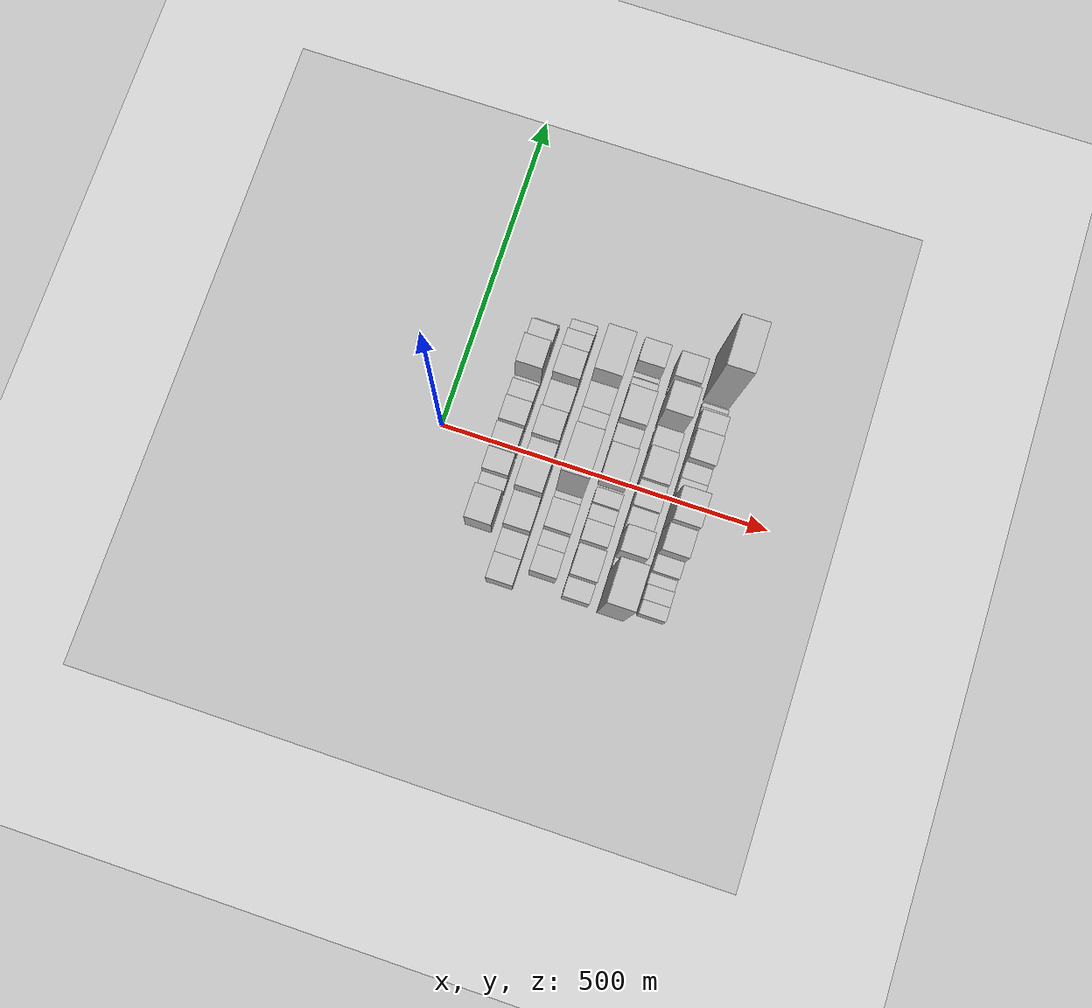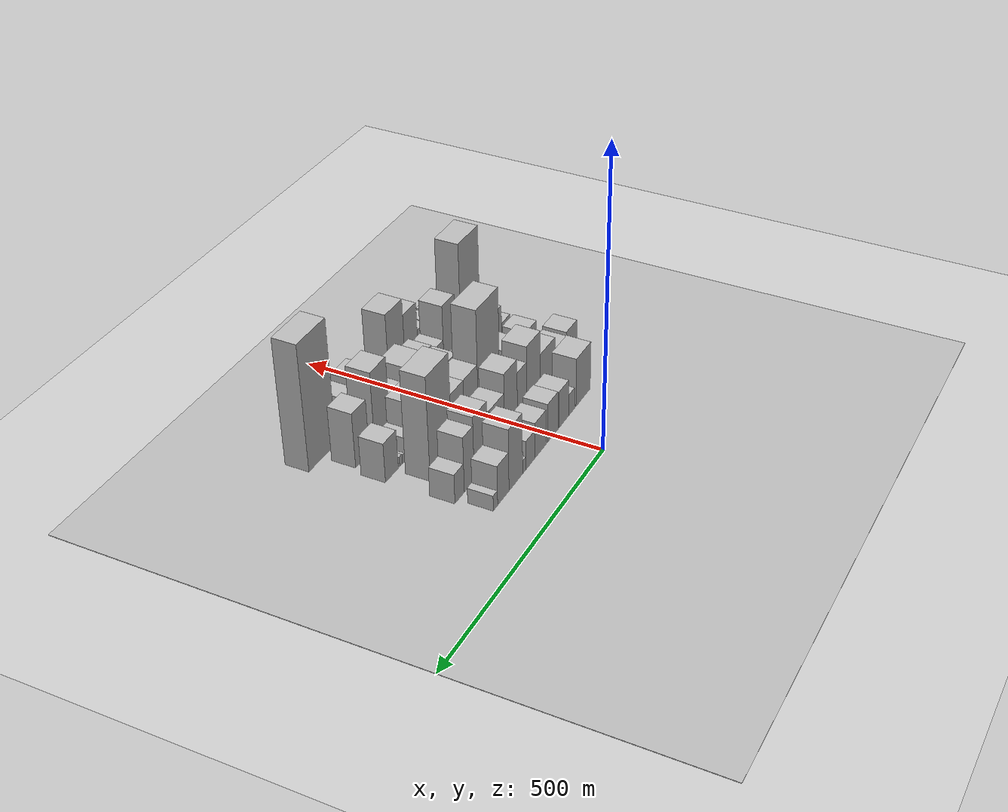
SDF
<sdf version="1.6">
 <world name="default">
  <include><name>ground_plane_1</name><uri>model://HANNAS_ground_plane</uri></include>
  <include>
   <name>ground_plane_2</name>
   <uri>model://HANNAS_ground_plane</uri>
   <pose>100 0 0  0 0 0</pose>
  </include>
  <model name="building_23">
   <static>1</static>
   <pose>100.0000 -103.5730 0 0.000000 0.000000 0.000000</pose>
   <link name="link">
    <pose>0 0 43.50 0 0 0</pose>
    <collision name="collision"><geometry><box><size>40.0000 50.8231 87.0000</size></box></geometry></collision>
    <visual name="visual">
     <cast_shadows>0</cast_shadows>
     <geometry><box><size>40.0000 50.8231 87.0000</size></box></geometry>
     <material>
      <script>
       <uri>model://HANNAS_wall/materials/scripts</uri>
       <uri>model://HANNAS_wall/materials/textures</uri>
       <name>vrc/HANNAS_wall</name>
      </script>
     </material>
    </visual>
   </link>
  </model>
  <model name="building_24">
   <static>1</static>
   <pose>100.0000 -62.7627 0 0.000000 0.000000 0.000000</pose>
   <link name="link">
    <pose>0 0 19.50 0 0 0</pose>
    <collision name="collision"><geometry><box><size>40.0000 20.7975 39.0000</size></box></geometry></collision>
    <visual name="visual">
     <cast_shadows>0</cast_shadows>
     <geometry><box><size>40.0000 20.7975 39.0000</size></box></geometry>
     <material>
      <script>
       <uri>model://HANNAS_wall/materials/scripts</uri>
       <uri>model://HANNAS_wall/materials/textures</uri>
       <name>vrc/HANNAS_wall</name>
      </script>
     </material>
    </visual>
   </link>
  </model>
  <model name="building_25">
   <static>1</static>
   <pose>100.0000 -35.5092 0 0.000000 0.000000 0.000000</pose>
   <link name="link">
    <pose>0 0 33.00 0 0 0</pose>
    <collision name="collision"><geometry><box><size>40.0000 33.7094 66.0000</size></box></geometry></collision>
    <visual name="visual">
     <cast_shadows>0</cast_shadows>
     <geometry><box><size>40.0000 33.7094 66.0000</size></box></geometry>
     <material>
      <script>
       <uri>model://HANNAS_wall/materials/scripts</uri>
       <uri>model://HANNAS_wall/materials/textures</uri>
       <name>vrc/HANNAS_wall</name>
      </script>
     </material>
    </visual>
   </link>
  </model>
  <model name="building_26">
   <static>1</static>
   <pose>100.0000 1.7583 0 0.000000 0.000000 0.000000</pose>
   <link name="link">
    <pose>0 0 34.50 0 0 0</pose>
    <collision name="collision"><geometry><box><size>40.0000 34.8256 69.0000</size></box></geometry></collision>
    <visual name="visual">
     <cast_shadows>0</cast_shadows>
     <geometry><box><size>40.0000 34.8256 69.0000</size></box></geometry>
     <material>
      <script>
       <uri>model://HANNAS_wall/materials/scripts</uri>
       <uri>model://HANNAS_wall/materials/textures</uri>
       <name>vrc/HANNAS_wall</name>
      </script>
     </material>
    </visual>
   </link>
  </model>
  <model name="building_27">
   <static>1</static>
   <pose>100.0000 42.5124 0 0.000000 0.000000 0.000000</pose>
   <link name="link">
    <pose>0 0 31.50 0 0 0</pose>
    <collision name="collision"><geometry><box><size>40.0000 36.6826 63.0000</size></box></geometry></collision>
    <visual name="visual">
     <cast_shadows>0</cast_shadows>
     <geometry><box><size>40.0000 36.6826 63.0000</size></box></geometry>
     <material>
      <script>
       <uri>model://HANNAS_wall/materials/scripts</uri>
       <uri>model://HANNAS_wall/materials/textures</uri>
       <name>vrc/HANNAS_wall</name>
      </script>
     </material>
    </visual>
   </link>
  </model>
  <model name="building_28">
   <static>1</static>
   <pose>100.0000 75.3512 0 0.000000 0.000000 0.000000</pose>
   <link name="link">
    <pose>0 0 25.50 0 0 0</pose>
    <collision name="collision"><geometry><box><size>40.0000 28.9949 51.0000</size></box></geometry></collision>
    <visual name="visual">
     <cast_shadows>0</cast_shadows>
     <geometry><box><size>40.0000 28.9949 51.0000</size></box></geometry>
     <material>
      <script>
       <uri>model://HANNAS_wall/materials/scripts</uri>
       <uri>model://HANNAS_wall/materials/textures</uri>
       <name>vrc/HANNAS_wall</name>
      </script>
     </material>
    </visual>
   </link>
  </model>
  <model name="building_29">
   <static>1</static>
   <pose>100.0000 95.3679 0 0.000000 0.000000 0.000000</pose>
   <link name="link">
    <pose>0 0 12.00 0 0 0</pose>
    <collision name="collision"><geometry><box><size>40.0000 11.0385 24.0000</size></box></geometry></collision>
    <visual name="visual">
     <cast_shadows>0</cast_shadows>
     <geometry><box><size>40.0000 11.0385 24.0000</size></box></geometry>
     <material>
      <script>
       <uri>model://HANNAS_wall/materials/scripts</uri>
       <uri>model://HANNAS_wall/materials/textures</uri>
       <name>vrc/HANNAS_wall</name>
      </script>
     </material>
    </visual>
   </link>
  </model>
  <model name="building_30">
   <static>1</static>
   <pose>100.0000 122.2510 0 0.000000 0.000000 0.000000</pose>
   <link name="link">
    <pose>0 0 54.00 0 0 0</pose>
    <collision name="collision"><geometry><box><size>40.0000 42.7277 108.0000</size></box></geometry></collision>
    <visual name="visual">
     <cast_shadows>0</cast_shadows>
     <geometry><box><size>40.0000 42.7277 108.0000</size></box></geometry>
     <material>
      <script>
       <uri>model://HANNAS_wall/materials/scripts</uri>
       <uri>model://HANNAS_wall/materials/textures</uri>
       <name>vrc/HANNAS_wall</name>
      </script>
     </material>
    </visual>
   </link>
  </model>
  <model name="building_31">
   <static>1</static>
   <pose>100.0000 161.0687 0 0.000000 0.000000 0.000000</pose>
   <link name="link">
    <pose>0 0 34.50 0 0 0</pose>
    <collision name="collision"><geometry><box><size>40.0000 34.9078 69.0000</size></box></geometry></collision>
    <visual name="visual">
     <cast_shadows>0</cast_shadows>
     <geometry><box><size>40.0000 34.9078 69.0000</size></box></geometry>
     <material>
      <script>
       <uri>model://HANNAS_wall/materials/scripts</uri>
       <uri>model://HANNAS_wall/materials/textures</uri>
       <name>vrc/HANNAS_wall</name>
      </script>
     </material>
    </visual>
   </link>
  </model>
  <model name="building_32">
   <static>1</static>
   <pose>100.0000 185.1499 0 0.000000 0.000000 0.000000</pose>
   <link name="link">
    <pose>0 0 13.50 0 0 0</pose>
    <collision name="collision"><geometry><box><size>40.0000 13.2545 27.0000</size></box></geometry></collision>
    <visual name="visual">
     <cast_shadows>0</cast_shadows>
     <geometry><box><size>40.0000 13.2545 27.0000</size></box></geometry>
     <material>
      <script>
       <uri>model://HANNAS_wall/materials/scripts</uri>
       <uri>model://HANNAS_wall/materials/textures</uri>
       <name>vrc/HANNAS_wall</name>
      </script>
     </material>
    </visual>
   </link>
  </model>
  <model name="building_74">
   <static>1</static>
   <pose>155.0000 -179.0641 0 0.000000 0.000000 0.000000</pose>
   <link name="link">
    <pose>0 0 34.50 0 0 0</pose>
    <collision name="collision"><geometry><box><size>40.0000 38.3473 69.0000</size></box></geometry></collision>
    <visual name="visual">
     <cast_shadows>0</cast_shadows>
     <geometry><box><size>40.0000 38.3473 69.0000</size></box></geometry>
     <material>
      <script>
       <uri>model://HANNAS_wall/materials/scripts</uri>
       <uri>model://HANNAS_wall/materials/textures</uri>
       <name>vrc/HANNAS_wall</name>
      </script>
     </material>
    </visual>
   </link>
  </model>
  <model name="building_75">
   <static>1</static>
   <pose>155.0000 -141.5818 0 0.000000 0.000000 0.000000</pose>
   <link name="link">
    <pose>0 0 31.50 0 0 0</pose>
    <collision name="collision"><geometry><box><size>40.0000 36.6174 63.0000</size></box></geometry></collision>
    <visual name="visual">
     <cast_shadows>0</cast_shadows>
     <geometry><box><size>40.0000 36.6174 63.0000</size></box></geometry>
     <material>
      <script>
       <uri>model://HANNAS_wall/materials/scripts</uri>
       <uri>model://HANNAS_wall/materials/textures</uri>
       <name>vrc/HANNAS_wall</name>
      </script>
     </material>
    </visual>
   </link>
  </model>
  <model name="building_76">
   <static>1</static>
   <pose>155.0000 -95.1414 0 0.000000 0.000000 0.000000</pose>
   <link name="link">
    <pose>0 0 42.00 0 0 0</pose>
    <collision name="collision"><geometry><box><size>40.0000 50.2634 84.0000</size></box></geometry></collision>
    <visual name="visual">
     <cast_shadows>0</cast_shadows>
     <geometry><box><size>40.0000 50.2634 84.0000</size></box></geometry>
     <material>
      <script>
       <uri>model://HANNAS_wall/materials/scripts</uri>
       <uri>model://HANNAS_wall/materials/textures</uri>
       <name>vrc/HANNAS_wall</name>
      </script>
     </material>
    </visual>
   </link>
  </model>
  <model name="building_77">
   <static>1</static>
   <pose>155.0000 -46.6092 0 0.000000 0.000000 0.000000</pose>
   <link name="link">
    <pose>0 0 63.00 0 0 0</pose>
    <collision name="collision"><geometry><box><size>40.0000 46.8009 126.0000</size></box></geometry></collision>
    <visual name="visual">
     <cast_shadows>0</cast_shadows>
     <geometry><box><size>40.0000 46.8009 126.0000</size></box></geometry>
     <material>
      <script>
       <uri>model://HANNAS_wall/materials/scripts</uri>
       <uri>model://HANNAS_wall/materials/textures</uri>
       <name>vrc/HANNAS_wall</name>
      </script>
     </material>
    </visual>
   </link>
  </model>
  <model name="building_78">
   <static>1</static>
   <pose>155.0000 -8.1289 0 0.000000 0.000000 0.000000</pose>
   <link name="link">
    <pose>0 0 49.50 0 0 0</pose>
    <collision name="collision"><geometry><box><size>40.0000 30.1599 99.0000</size></box></geometry></collision>
    <visual name="visual">
     <cast_shadows>0</cast_shadows>
     <geometry><box><size>40.0000 30.1599 99.0000</size></box></geometry>
     <material>
      <script>
       <uri>model://HANNAS_wall/materials/scripts</uri>
       <uri>model://HANNAS_wall/materials/textures</uri>
       <name>vrc/HANNAS_wall</name>
      </script>
     </material>
    </visual>
   </link>
  </model>
  <model name="building_79">
   <static>1</static>
   <pose>155.0000 27.8453 0 0.000000 0.000000 0.000000</pose>
   <link name="link">
    <pose>0 0 61.50 0 0 0</pose>
    <collision name="collision"><geometry><box><size>40.0000 41.7885 123.0000</size></box></geometry></collision>
    <visual name="visual">
     <cast_shadows>0</cast_shadows>
     <geometry><box><size>40.0000 41.7885 123.0000</size></box></geometry>
     <material>
      <script>
       <uri>model://HANNAS_wall/materials/scripts</uri>
       <uri>model://HANNAS_wall/materials/textures</uri>
       <name>vrc/HANNAS_wall</name>
      </script>
     </material>
    </visual>
   </link>
  </model>
  <model name="building_80">
   <static>1</static>
   <pose>155.0000 72.2314 0 0.000000 0.000000 0.000000</pose>
   <link name="link">
    <pose>0 0 45.00 0 0 0</pose>
    <collision name="collision"><geometry><box><size>40.0000 46.9836 90.0000</size></box></geometry></collision>
    <visual name="visual">
     <cast_shadows>0</cast_shadows>
     <geometry><box><size>40.0000 46.9836 90.0000</size></box></geometry>
     <material>
      <script>
       <uri>model://HANNAS_wall/materials/scripts</uri>
       <uri>model://HANNAS_wall/materials/textures</uri>
       <name>vrc/HANNAS_wall</name>
      </script>
     </material>
    </visual>
   </link>
  </model>
  <model name="building_81">
   <static>1</static>
   <pose>155.0000 122.4988 0 0.000000 0.000000 0.000000</pose>
   <link name="link">
    <pose>0 0 55.50 0 0 0</pose>
    <collision name="collision"><geometry><box><size>40.0000 41.5512 111.0000</size></box></geometry></collision>
    <visual name="visual">
     <cast_shadows>0</cast_shadows>
     <geometry><box><size>40.0000 41.5512 111.0000</size></box></geometry>
     <material>
      <script>
       <uri>model://HANNAS_wall/materials/scripts</uri>
       <uri>model://HANNAS_wall/materials/textures</uri>
       <name>vrc/HANNAS_wall</name>
      </script>
     </material>
    </visual>
   </link>
  </model>
  <model name="building_82">
   <static>1</static>
   <pose>155.0000 158.2174 0 0.000000 0.000000 0.000000</pose>
   <link name="link">
    <pose>0 0 48.00 0 0 0</pose>
    <collision name="collision"><geometry><box><size>40.0000 29.8861 96.0000</size></box></geometry></collision>
    <visual name="visual">
     <cast_shadows>0</cast_shadows>
     <geometry><box><size>40.0000 29.8861 96.0000</size></box></geometry>
     <material>
      <script>
       <uri>model://HANNAS_wall/materials/scripts</uri>
       <uri>model://HANNAS_wall/materials/textures</uri>
       <name>vrc/HANNAS_wall</name>
      </script>
     </material>
    </visual>
   </link>
  </model>
  <model name="building_83">
   <static>1</static>
   <pose>155.0000 187.1447 0 0.000000 0.000000 0.000000</pose>
   <link name="link">
    <pose>0 0 25.50 0 0 0</pose>
    <collision name="collision"><geometry><box><size>40.0000 27.9684 51.0000</size></box></geometry></collision>
    <visual name="visual">
     <cast_shadows>0</cast_shadows>
     <geometry><box><size>40.0000 27.9684 51.0000</size></box></geometry>
     <material>
      <script>
       <uri>model://HANNAS_wall/materials/scripts</uri>
       <uri>model://HANNAS_wall/materials/textures</uri>
       <name>vrc/HANNAS_wall</name>
      </script>
     </material>
    </visual>
   </link>
  </model>
  <model name="building_127">
   <static>1</static>
   <pose>210.0000 -150.8243 0 0.000000 0.000000 0.000000</pose>
   <link name="link">
    <pose>0 0 34.50 0 0 0</pose>
    <collision name="collision"><geometry><box><size>40.0000 37.6395 69.0000</size></box></geometry></collision>
    <visual name="visual">
     <cast_shadows>0</cast_shadows>
     <geometry><box><size>40.0000 37.6395 69.0000</size></box></geometry>
     <material>
      <script>
       <uri>model://HANNAS_wall/materials/scripts</uri>
       <uri>model://HANNAS_wall/materials/textures</uri>
       <name>vrc/HANNAS_wall</name>
      </script>
     </material>
    </visual>
   </link>
  </model>
  <model name="building_128">
   <static>1</static>
   <pose>210.0000 -118.5716 0 0.000000 0.000000 0.000000</pose>
   <link name="link">
    <pose>0 0 22.50 0 0 0</pose>
    <collision name="collision"><geometry><box><size>40.0000 26.8660 45.0000</size></box></geometry></collision>
    <visual name="visual">
     <cast_shadows>0</cast_shadows>
     <geometry><box><size>40.0000 26.8660 45.0000</size></box></geometry>
     <material>
      <script>
       <uri>model://HANNAS_wall/materials/scripts</uri>
       <uri>model://HANNAS_wall/materials/textures</uri>
       <name>vrc/HANNAS_wall</name>
      </script>
     </material>
    </visual>
   </link>
  </model>
  <model name="building_129">
   <static>1</static>
   <pose>210.0000 -83.3404 0 0.000000 0.000000 0.000000</pose>
   <link name="link">
    <pose>0 0 39.00 0 0 0</pose>
    <collision name="collision"><geometry><box><size>40.0000 43.5964 78.0000</size></box></geometry></collision>
    <visual name="visual">
     <cast_shadows>0</cast_shadows>
     <geometry><box><size>40.0000 43.5964 78.0000</size></box></geometry>
     <material>
      <script>
       <uri>model://HANNAS_wall/materials/scripts</uri>
       <uri>model://HANNAS_wall/materials/textures</uri>
       <name>vrc/HANNAS_wall</name>
      </script>
     </material>
    </visual>
   </link>
  </model>
  <model name="building_130">
   <static>1</static>
   <pose>210.0000 -49.5904 0 0.000000 0.000000 0.000000</pose>
   <link name="link">
    <pose>0 0 13.50 0 0 0</pose>
    <collision name="collision"><geometry><box><size>40.0000 11.9034 27.0000</size></box></geometry></collision>
    <visual name="visual">
     <cast_shadows>0</cast_shadows>
     <geometry><box><size>40.0000 11.9034 27.0000</size></box></geometry>
     <material>
      <script>
       <uri>model://HANNAS_wall/materials/scripts</uri>
       <uri>model://HANNAS_wall/materials/textures</uri>
       <name>vrc/HANNAS_wall</name>
      </script>
     </material>
    </visual>
   </link>
  </model>
  <model name="building_131">
   <static>1</static>
   <pose>210.0000 -9.3462 0 0.000000 0.000000 0.000000</pose>
   <link name="link">
    <pose>0 0 100.50 0 0 0</pose>
    <collision name="collision"><geometry><box><size>40.0000 68.5850 201.0000</size></box></geometry></collision>
    <visual name="visual">
     <cast_shadows>0</cast_shadows>
     <geometry><box><size>40.0000 68.5850 201.0000</size></box></geometry>
     <material>
      <script>
       <uri>model://HANNAS_wall/materials/scripts</uri>
       <uri>model://HANNAS_wall/materials/textures</uri>
       <name>vrc/HANNAS_wall</name>
      </script>
     </material>
    </visual>
   </link>
  </model>
  <model name="building_132">
   <static>1</static>
   <pose>210.0000 46.2725 0 0.000000 0.000000 0.000000</pose>
   <link name="link">
    <pose>0 0 54.00 0 0 0</pose>
    <collision name="collision"><geometry><box><size>40.0000 42.6525 108.0000</size></box></geometry></collision>
    <visual name="visual">
     <cast_shadows>0</cast_shadows>
     <geometry><box><size>40.0000 42.6525 108.0000</size></box></geometry>
     <material>
      <script>
       <uri>model://HANNAS_wall/materials/scripts</uri>
       <uri>model://HANNAS_wall/materials/textures</uri>
       <name>vrc/HANNAS_wall</name>
      </script>
     </material>
    </visual>
   </link>
  </model>
  <model name="building_133">
   <static>1</static>
   <pose>210.0000 87.3771 0 0.000000 0.000000 0.000000</pose>
   <link name="link">
    <pose>0 0 54.00 0 0 0</pose>
    <collision name="collision"><geometry><box><size>40.0000 39.5568 108.0000</size></box></geometry></collision>
    <visual name="visual">
     <cast_shadows>0</cast_shadows>
     <geometry><box><size>40.0000 39.5568 108.0000</size></box></geometry>
     <material>
      <script>
       <uri>model://HANNAS_wall/materials/scripts</uri>
       <uri>model://HANNAS_wall/materials/textures</uri>
       <name>vrc/HANNAS_wall</name>
      </script>
     </material>
    </visual>
   </link>
  </model>
  <model name="building_134">
   <static>1</static>
   <pose>210.0000 139.8029 0 0.000000 0.000000 0.000000</pose>
   <link name="link">
    <pose>0 0 90.00 0 0 0</pose>
    <collision name="collision"><geometry><box><size>40.0000 65.2948 180.0000</size></box></geometry></collision>
    <visual name="visual">
     <cast_shadows>0</cast_shadows>
     <geometry><box><size>40.0000 65.2948 180.0000</size></box></geometry>
     <material>
      <script>
       <uri>model://HANNAS_wall/materials/scripts</uri>
       <uri>model://HANNAS_wall/materials/textures</uri>
       <name>vrc/HANNAS_wall</name>
      </script>
     </material>
    </visual>
   </link>
  </model>
  <model name="building_177">
   <static>1</static>
   <pose>265.0000 -173.2075 0 0.000000 0.000000 0.000000</pose>
   <link name="link">
    <pose>0 0 27.00 0 0 0</pose>
    <collision name="collision"><geometry><box><size>40.0000 29.4970 54.0000</size></box></geometry></collision>
    <visual name="visual">
     <cast_shadows>0</cast_shadows>
     <geometry><box><size>40.0000 29.4970 54.0000</size></box></geometry>
     <material>
      <script>
       <uri>model://HANNAS_wall/materials/scripts</uri>
       <uri>model://HANNAS_wall/materials/textures</uri>
       <name>vrc/HANNAS_wall</name>
      </script>
     </material>
    </visual>
   </link>
  </model>
  <model name="building_178">
   <static>1</static>
   <pose>265.0000 -135.5648 0 0.000000 0.000000 0.000000</pose>
   <link name="link">
    <pose>0 0 43.50 0 0 0</pose>
    <collision name="collision"><geometry><box><size>40.0000 45.7884 87.0000</size></box></geometry></collision>
    <visual name="visual">
     <cast_shadows>0</cast_shadows>
     <geometry><box><size>40.0000 45.7884 87.0000</size></box></geometry>
     <material>
      <script>
       <uri>model://HANNAS_wall/materials/scripts</uri>
       <uri>model://HANNAS_wall/materials/textures</uri>
       <name>vrc/HANNAS_wall</name>
      </script>
     </material>
    </visual>
   </link>
  </model>
  <model name="building_179">
   <static>1</static>
   <pose>265.0000 -88.8656 0 0.000000 0.000000 0.000000</pose>
   <link name="link">
    <pose>0 0 30.00 0 0 0</pose>
    <collision name="collision"><geometry><box><size>40.0000 31.6098 60.0000</size></box></geometry></collision>
    <visual name="visual">
     <cast_shadows>0</cast_shadows>
     <geometry><box><size>40.0000 31.6098 60.0000</size></box></geometry>
     <material>
      <script>
       <uri>model://HANNAS_wall/materials/scripts</uri>
       <uri>model://HANNAS_wall/materials/textures</uri>
       <name>vrc/HANNAS_wall</name>
      </script>
     </material>
    </visual>
   </link>
  </model>
  <model name="building_180">
   <static>1</static>
   <pose>265.0000 -60.8266 0 0.000000 0.000000 0.000000</pose>
   <link name="link">
    <pose>0 0 24.00 0 0 0</pose>
    <collision name="collision"><geometry><box><size>40.0000 24.4681 48.0000</size></box></geometry></collision>
    <visual name="visual">
     <cast_shadows>0</cast_shadows>
     <geometry><box><size>40.0000 24.4681 48.0000</size></box></geometry>
     <material>
      <script>
       <uri>model://HANNAS_wall/materials/scripts</uri>
       <uri>model://HANNAS_wall/materials/textures</uri>
       <name>vrc/HANNAS_wall</name>
      </script>
     </material>
    </visual>
   </link>
  </model>
  <model name="building_181">
   <static>1</static>
   <pose>265.0000 -34.0613 0 0.000000 0.000000 0.000000</pose>
   <link name="link">
    <pose>0 0 21.00 0 0 0</pose>
    <collision name="collision"><geometry><box><size>40.0000 23.0626 42.0000</size></box></geometry></collision>
    <visual name="visual">
     <cast_shadows>0</cast_shadows>
     <geometry><box><size>40.0000 23.0626 42.0000</size></box></geometry>
     <material>
      <script>
       <uri>model://HANNAS_wall/materials/scripts</uri>
       <uri>model://HANNAS_wall/materials/textures</uri>
       <name>vrc/HANNAS_wall</name>
      </script>
     </material>
    </visual>
   </link>
  </model>
  <model name="building_182">
   <static>1</static>
   <pose>265.0000 12.6544 0 0.000000 0.000000 0.000000</pose>
   <link name="link">
    <pose>0 0 45.00 0 0 0</pose>
    <collision name="collision"><geometry><box><size>40.0000 50.3688 90.0000</size></box></geometry></collision>
    <visual name="visual">
     <cast_shadows>0</cast_shadows>
     <geometry><box><size>40.0000 50.3688 90.0000</size></box></geometry>
     <material>
      <script>
       <uri>model://HANNAS_wall/materials/scripts</uri>
       <uri>model://HANNAS_wall/materials/textures</uri>
       <name>vrc/HANNAS_wall</name>
      </script>
     </material>
    </visual>
   </link>
  </model>
  <model name="building_183">
   <static>1</static>
   <pose>265.0000 58.9245 0 0.000000 0.000000 0.000000</pose>
   <link name="link">
    <pose>0 0 27.00 0 0 0</pose>
    <collision name="collision"><geometry><box><size>40.0000 30.1714 54.0000</size></box></geometry></collision>
    <visual name="visual">
     <cast_shadows>0</cast_shadows>
     <geometry><box><size>40.0000 30.1714 54.0000</size></box></geometry>
     <material>
      <script>
       <uri>model://HANNAS_wall/materials/scripts</uri>
       <uri>model://HANNAS_wall/materials/textures</uri>
       <name>vrc/HANNAS_wall</name>
      </script>
     </material>
    </visual>
   </link>
  </model>
  <model name="building_184">
   <static>1</static>
   <pose>265.0000 99.9097 0 0.000000 0.000000 0.000000</pose>
   <link name="link">
    <pose>0 0 43.50 0 0 0</pose>
    <collision name="collision"><geometry><box><size>40.0000 51.7991 87.0000</size></box></geometry></collision>
    <visual name="visual">
     <cast_shadows>0</cast_shadows>
     <geometry><box><size>40.0000 51.7991 87.0000</size></box></geometry>
     <material>
      <script>
       <uri>model://HANNAS_wall/materials/scripts</uri>
       <uri>model://HANNAS_wall/materials/textures</uri>
       <name>vrc/HANNAS_wall</name>
      </script>
     </material>
    </visual>
   </link>
  </model>
  <model name="building_185">
   <static>1</static>
   <pose>265.0000 136.7262 0 0.000000 0.000000 0.000000</pose>
   <link name="link">
    <pose>0 0 21.00 0 0 0</pose>
    <collision name="collision"><geometry><box><size>40.0000 21.8338 42.0000</size></box></geometry></collision>
    <visual name="visual">
     <cast_shadows>0</cast_shadows>
     <geometry><box><size>40.0000 21.8338 42.0000</size></box></geometry>
     <material>
      <script>
       <uri>model://HANNAS_wall/materials/scripts</uri>
       <uri>model://HANNAS_wall/materials/textures</uri>
       <name>vrc/HANNAS_wall</name>
      </script>
     </material>
    </visual>
   </link>
  </model>
  <model name="building_186">
   <static>1</static>
   <pose>265.0000 151.3010 0 0.000000 0.000000 0.000000</pose>
   <link name="link">
    <pose>0 0 7.50 0 0 0</pose>
    <collision name="collision"><geometry><box><size>40.0000 7.3160 15.0000</size></box></geometry></collision>
    <visual name="visual">
     <cast_shadows>0</cast_shadows>
     <geometry><box><size>40.0000 7.3160 15.0000</size></box></geometry>
     <material>
      <script>
       <uri>model://HANNAS_wall/materials/scripts</uri>
       <uri>model://HANNAS_wall/materials/textures</uri>
       <name>vrc/HANNAS_wall</name>
      </script>
     </material>
    </visual>
   </link>
  </model>
  <model name="building_187">
   <static>1</static>
   <pose>265.0000 158.8041 0 0.000000 0.000000 0.000000</pose>
   <link name="link">
    <pose>0 0 9.00 0 0 0</pose>
    <collision name="collision"><geometry><box><size>40.0000 7.6901 18.0000</size></box></geometry></collision>
    <visual name="visual">
     <cast_shadows>0</cast_shadows>
     <geometry><box><size>40.0000 7.6901 18.0000</size></box></geometry>
     <material>
      <script>
       <uri>model://HANNAS_wall/materials/scripts</uri>
       <uri>model://HANNAS_wall/materials/textures</uri>
       <name>vrc/HANNAS_wall</name>
      </script>
     </material>
    </visual>
   </link>
  </model>
  <model name="building_188">
   <static>1</static>
   <pose>265.0000 184.7537 0 0.000000 0.000000 0.000000</pose>
   <link name="link">
    <pose>0 0 34.50 0 0 0</pose>
    <collision name="collision"><geometry><box><size>40.0000 36.2090 69.0000</size></box></geometry></collision>
    <visual name="visual">
     <cast_shadows>0</cast_shadows>
     <geometry><box><size>40.0000 36.2090 69.0000</size></box></geometry>
     <material>
      <script>
       <uri>model://HANNAS_wall/materials/scripts</uri>
       <uri>model://HANNAS_wall/materials/textures</uri>
       <name>vrc/HANNAS_wall</name>
      </script>
     </material>
    </visual>
   </link>
  </model>
  <model name="building_233">
   <static>1</static>
   <pose>320.0000 -158.9031 0 0.000000 0.000000 0.000000</pose>
   <link name="link">
    <pose>0 0 99.00 0 0 0</pose>
    <collision name="collision"><geometry><box><size>40.0000 63.1608 198.0000</size></box></geometry></collision>
    <visual name="visual">
     <cast_shadows>0</cast_shadows>
     <geometry><box><size>40.0000 63.1608 198.0000</size></box></geometry>
     <material>
      <script>
       <uri>model://HANNAS_wall/materials/scripts</uri>
       <uri>model://HANNAS_wall/materials/textures</uri>
       <name>vrc/HANNAS_wall</name>
      </script>
     </material>
    </visual>
   </link>
  </model>
  <model name="building_234">
   <static>1</static>
   <pose>320.0000 -118.6804 0 0.000000 0.000000 0.000000</pose>
   <link name="link">
    <pose>0 0 16.50 0 0 0</pose>
    <collision name="collision"><geometry><box><size>40.0000 17.2844 33.0000</size></box></geometry></collision>
    <visual name="visual">
     <cast_shadows>0</cast_shadows>
     <geometry><box><size>40.0000 17.2844 33.0000</size></box></geometry>
     <material>
      <script>
       <uri>model://HANNAS_wall/materials/scripts</uri>
       <uri>model://HANNAS_wall/materials/textures</uri>
       <name>vrc/HANNAS_wall</name>
      </script>
     </material>
    </visual>
   </link>
  </model>
  <model name="building_235">
   <static>1</static>
   <pose>320.0000 -90.8640 0 0.000000 0.000000 0.000000</pose>
   <link name="link">
    <pose>0 0 60.00 0 0 0</pose>
    <collision name="collision"><geometry><box><size>40.0000 38.3484 120.0000</size></box></geometry></collision>
    <visual name="visual">
     <cast_shadows>0</cast_shadows>
     <geometry><box><size>40.0000 38.3484 120.0000</size></box></geometry>
     <material>
      <script>
       <uri>model://HANNAS_wall/materials/scripts</uri>
       <uri>model://HANNAS_wall/materials/textures</uri>
       <name>vrc/HANNAS_wall</name>
      </script>
     </material>
    </visual>
   </link>
  </model>
  <model name="building_236">
   <static>1</static>
   <pose>320.0000 -54.0049 0 0.000000 0.000000 0.000000</pose>
   <link name="link">
    <pose>0 0 30.00 0 0 0</pose>
    <collision name="collision"><geometry><box><size>40.0000 35.3699 60.0000</size></box></geometry></collision>
    <visual name="visual">
     <cast_shadows>0</cast_shadows>
     <geometry><box><size>40.0000 35.3699 60.0000</size></box></geometry>
     <material>
      <script>
       <uri>model://HANNAS_wall/materials/scripts</uri>
       <uri>model://HANNAS_wall/materials/textures</uri>
       <name>vrc/HANNAS_wall</name>
      </script>
     </material>
    </visual>
   </link>
  </model>
  <model name="building_237">
   <static>1</static>
   <pose>320.0000 -16.9118 0 0.000000 0.000000 0.000000</pose>
   <link name="link">
    <pose>0 0 36.00 0 0 0</pose>
    <collision name="collision"><geometry><box><size>40.0000 38.8161 72.0000</size></box></geometry></collision>
    <visual name="visual">
     <cast_shadows>0</cast_shadows>
     <geometry><box><size>40.0000 38.8161 72.0000</size></box></geometry>
     <material>
      <script>
       <uri>model://HANNAS_wall/materials/scripts</uri>
       <uri>model://HANNAS_wall/materials/textures</uri>
       <name>vrc/HANNAS_wall</name>
      </script>
     </material>
    </visual>
   </link>
  </model>
  <model name="building_238">
   <static>1</static>
   <pose>320.0000 26.7732 0 0.000000 0.000000 0.000000</pose>
   <link name="link">
    <pose>0 0 43.50 0 0 0</pose>
    <collision name="collision"><geometry><box><size>40.0000 48.5539 87.0000</size></box></geometry></collision>
    <visual name="visual">
     <cast_shadows>0</cast_shadows>
     <geometry><box><size>40.0000 48.5539 87.0000</size></box></geometry>
     <material>
      <script>
       <uri>model://HANNAS_wall/materials/scripts</uri>
       <uri>model://HANNAS_wall/materials/textures</uri>
       <name>vrc/HANNAS_wall</name>
      </script>
     </material>
    </visual>
   </link>
  </model>
  <model name="building_239">
   <static>1</static>
   <pose>320.0000 68.8217 0 0.000000 0.000000 0.000000</pose>
   <link name="link">
    <pose>0 0 30.00 0 0 0</pose>
    <collision name="collision"><geometry><box><size>40.0000 35.5432 60.0000</size></box></geometry></collision>
    <visual name="visual">
     <cast_shadows>0</cast_shadows>
     <geometry><box><size>40.0000 35.5432 60.0000</size></box></geometry>
     <material>
      <script>
       <uri>model://HANNAS_wall/materials/scripts</uri>
       <uri>model://HANNAS_wall/materials/textures</uri>
       <name>vrc/HANNAS_wall</name>
      </script>
     </material>
    </visual>
   </link>
  </model>
  <model name="building_240">
   <static>1</static>
   <pose>320.0000 116.7185 0 0.000000 0.000000 0.000000</pose>
   <link name="link">
    <pose>0 0 66.00 0 0 0</pose>
    <collision name="collision"><geometry><box><size>40.0000 44.2503 132.0000</size></box></geometry></collision>
    <visual name="visual">
     <cast_shadows>0</cast_shadows>
     <geometry><box><size>40.0000 44.2503 132.0000</size></box></geometry>
     <material>
      <script>
       <uri>model://HANNAS_wall/materials/scripts</uri>
       <uri>model://HANNAS_wall/materials/textures</uri>
       <name>vrc/HANNAS_wall</name>
      </script>
     </material>
    </visual>
   </link>
  </model>
  <model name="building_241">
   <static>1</static>
   <pose>320.0000 150.6025 0 0.000000 0.000000 0.000000</pose>
   <link name="link">
    <pose>0 0 9.00 0 0 0</pose>
    <collision name="collision"><geometry><box><size>40.0000 7.5178 18.0000</size></box></geometry></collision>
    <visual name="visual">
     <cast_shadows>0</cast_shadows>
     <geometry><box><size>40.0000 7.5178 18.0000</size></box></geometry>
     <material>
      <script>
       <uri>model://HANNAS_wall/materials/scripts</uri>
       <uri>model://HANNAS_wall/materials/textures</uri>
       <name>vrc/HANNAS_wall</name>
      </script>
     </material>
    </visual>
   </link>
  </model>
  <model name="building_242">
   <static>1</static>
   <pose>320.0000 173.4065 0 0.000000 0.000000 0.000000</pose>
   <link name="link">
    <pose>0 0 48.00 0 0 0</pose>
    <collision name="collision"><geometry><box><size>40.0000 38.0901 96.0000</size></box></geometry></collision>
    <visual name="visual">
     <cast_shadows>0</cast_shadows>
     <geometry><box><size>40.0000 38.0901 96.0000</size></box></geometry>
     <material>
      <script>
       <uri>model://HANNAS_wall/materials/scripts</uri>
       <uri>model://HANNAS_wall/materials/textures</uri>
       <name>vrc/HANNAS_wall</name>
      </script>
     </material>
    </visual>
   </link>
  </model>
  <model name="building_284">
   <static>1</static>
   <pose>375.0000 -165.9761 0 0.000000 0.000000 0.000000</pose>
   <link name="link">
    <pose>0 0 21.00 0 0 0</pose>
    <collision name="collision"><geometry><box><size>40.0000 21.4654 42.0000</size></box></geometry></collision>
    <visual name="visual">
     <cast_shadows>0</cast_shadows>
     <geometry><box><size>40.0000 21.4654 42.0000</size></box></geometry>
     <material>
      <script>
       <uri>model://HANNAS_wall/materials/scripts</uri>
       <uri>model://HANNAS_wall/materials/textures</uri>
       <name>vrc/HANNAS_wall</name>
      </script>
     </material>
    </visual>
   </link>
  </model>
  <model name="building_285">
   <static>1</static>
   <pose>375.0000 -143.6222 0 0.000000 0.000000 0.000000</pose>
   <link name="link">
    <pose>0 0 19.50 0 0 0</pose>
    <collision name="collision"><geometry><box><size>40.0000 23.2425 39.0000</size></box></geometry></collision>
    <visual name="visual">
     <cast_shadows>0</cast_shadows>
     <geometry><box><size>40.0000 23.2425 39.0000</size></box></geometry>
     <material>
      <script>
       <uri>model://HANNAS_wall/materials/scripts</uri>
       <uri>model://HANNAS_wall/materials/textures</uri>
       <name>vrc/HANNAS_wall</name>
      </script>
     </material>
    </visual>
   </link>
  </model>
  <model name="building_286">
   <static>1</static>
   <pose>375.0000 -123.0058 0 0.000000 0.000000 0.000000</pose>
   <link name="link">
    <pose>0 0 15.00 0 0 0</pose>
    <collision name="collision"><geometry><box><size>40.0000 17.9904 30.0000</size></box></geometry></collision>
    <visual name="visual">
     <cast_shadows>0</cast_shadows>
     <geometry><box><size>40.0000 17.9904 30.0000</size></box></geometry>
     <material>
      <script>
       <uri>model://HANNAS_wall/materials/scripts</uri>
       <uri>model://HANNAS_wall/materials/textures</uri>
       <name>vrc/HANNAS_wall</name>
      </script>
     </material>
    </visual>
   </link>
  </model>
  <model name="building_287">
   <static>1</static>
   <pose>375.0000 -101.1751 0 0.000000 0.000000 0.000000</pose>
   <link name="link">
    <pose>0 0 25.50 0 0 0</pose>
    <collision name="collision"><geometry><box><size>40.0000 25.6708 51.0000</size></box></geometry></collision>
    <visual name="visual">
     <cast_shadows>0</cast_shadows>
     <geometry><box><size>40.0000 25.6708 51.0000</size></box></geometry>
     <material>
      <script>
       <uri>model://HANNAS_wall/materials/scripts</uri>
       <uri>model://HANNAS_wall/materials/textures</uri>
       <name>vrc/HANNAS_wall</name>
      </script>
     </material>
    </visual>
   </link>
  </model>
  <model name="building_288">
   <static>1</static>
   <pose>375.0000 -68.2872 0 0.000000 0.000000 0.000000</pose>
   <link name="link">
    <pose>0 0 51.00 0 0 0</pose>
    <collision name="collision"><geometry><box><size>40.0000 40.1050 102.0000</size></box></geometry></collision>
    <visual name="visual">
     <cast_shadows>0</cast_shadows>
     <geometry><box><size>40.0000 40.1050 102.0000</size></box></geometry>
     <material>
      <script>
       <uri>model://HANNAS_wall/materials/scripts</uri>
       <uri>model://HANNAS_wall/materials/textures</uri>
       <name>vrc/HANNAS_wall</name>
      </script>
     </material>
    </visual>
   </link>
  </model>
  <model name="building_289">
   <static>1</static>
   <pose>375.0000 -23.5067 0 0.000000 0.000000 0.000000</pose>
   <link name="link">
    <pose>0 0 66.00 0 0 0</pose>
    <collision name="collision"><geometry><box><size>40.0000 49.4560 132.0000</size></box></geometry></collision>
    <visual name="visual">
     <cast_shadows>0</cast_shadows>
     <geometry><box><size>40.0000 49.4560 132.0000</size></box></geometry>
     <material>
      <script>
       <uri>model://HANNAS_wall/materials/scripts</uri>
       <uri>model://HANNAS_wall/materials/textures</uri>
       <name>vrc/HANNAS_wall</name>
      </script>
     </material>
    </visual>
   </link>
  </model>
  <model name="building_290">
   <static>1</static>
   <pose>375.0000 14.2918 0 0.000000 0.000000 0.000000</pose>
   <link name="link">
    <pose>0 0 22.50 0 0 0</pose>
    <collision name="collision"><geometry><box><size>40.0000 26.1410 45.0000</size></box></geometry></collision>
    <visual name="visual">
     <cast_shadows>0</cast_shadows>
     <geometry><box><size>40.0000 26.1410 45.0000</size></box></geometry>
     <material>
      <script>
       <uri>model://HANNAS_wall/materials/scripts</uri>
       <uri>model://HANNAS_wall/materials/textures</uri>
       <name>vrc/HANNAS_wall</name>
      </script>
     </material>
    </visual>
   </link>
  </model>
  <model name="building_291">
   <static>1</static>
   <pose>375.0000 39.8555 0 0.000000 0.000000 0.000000</pose>
   <link name="link">
    <pose>0 0 22.50 0 0 0</pose>
    <collision name="collision"><geometry><box><size>40.0000 24.9865 45.0000</size></box></geometry></collision>
    <visual name="visual">
     <cast_shadows>0</cast_shadows>
     <geometry><box><size>40.0000 24.9865 45.0000</size></box></geometry>
     <material>
      <script>
       <uri>model://HANNAS_wall/materials/scripts</uri>
       <uri>model://HANNAS_wall/materials/textures</uri>
       <name>vrc/HANNAS_wall</name>
      </script>
     </material>
    </visual>
   </link>
  </model>
  <model name="building_292">
   <static>1</static>
   <pose>375.0000 74.5426 0 0.000000 0.000000 0.000000</pose>
   <link name="link">
    <pose>0 0 37.50 0 0 0</pose>
    <collision name="collision"><geometry><box><size>40.0000 44.3877 75.0000</size></box></geometry></collision>
    <visual name="visual">
     <cast_shadows>0</cast_shadows>
     <geometry><box><size>40.0000 44.3877 75.0000</size></box></geometry>
     <material>
      <script>
       <uri>model://HANNAS_wall/materials/scripts</uri>
       <uri>model://HANNAS_wall/materials/textures</uri>
       <name>vrc/HANNAS_wall</name>
      </script>
     </material>
    </visual>
   </link>
  </model>
  <model name="building_293">
   <static>1</static>
   <pose>375.0000 112.8234 0 0.000000 0.000000 0.000000</pose>
   <link name="link">
    <pose>0 0 31.50 0 0 0</pose>
    <collision name="collision"><geometry><box><size>40.0000 32.1739 63.0000</size></box></geometry></collision>
    <visual name="visual">
     <cast_shadows>0</cast_shadows>
     <geometry><box><size>40.0000 32.1739 63.0000</size></box></geometry>
     <material>
      <script>
       <uri>model://HANNAS_wall/materials/scripts</uri>
       <uri>model://HANNAS_wall/materials/textures</uri>
       <name>vrc/HANNAS_wall</name>
      </script>
     </material>
    </visual>
   </link>
  </model>
  <model name="building_294">
   <static>1</static>
   <pose>375.0000 137.6715 0 0.000000 0.000000 0.000000</pose>
   <link name="link">
    <pose>0 0 10.50 0 0 0</pose>
    <collision name="collision"><geometry><box><size>40.0000 9.5223 21.0000</size></box></geometry></collision>
    <visual name="visual">
     <cast_shadows>0</cast_shadows>
     <geometry><box><size>40.0000 9.5223 21.0000</size></box></geometry>
     <material>
      <script>
       <uri>model://HANNAS_wall/materials/scripts</uri>
       <uri>model://HANNAS_wall/materials/textures</uri>
       <name>vrc/HANNAS_wall</name>
      </script>
     </material>
    </visual>
   </link>
  </model>
  <model name="building_295">
   <static>1</static>
   <pose>375.0000 146.1334 0 0.000000 0.000000 0.000000</pose>
   <link name="link">
    <pose>0 0 9.00 0 0 0</pose>
    <collision name="collision"><geometry><box><size>40.0000 7.4015 18.0000</size></box></geometry></collision>
    <visual name="visual">
     <cast_shadows>0</cast_shadows>
     <geometry><box><size>40.0000 7.4015 18.0000</size></box></geometry>
     <material>
      <script>
       <uri>model://HANNAS_wall/materials/scripts</uri>
       <uri>model://HANNAS_wall/materials/textures</uri>
       <name>vrc/HANNAS_wall</name>
      </script>
     </material>
    </visual>
   </link>
  </model>
  <model name="building_296">
   <static>1</static>
   <pose>375.0000 192.6347 0 0.000000 0.000000 0.000000</pose>
   <link name="link">
    <pose>0 0 109.50 0 0 0</pose>
    <collision name="collision"><geometry><box><size>40.0000 73.6011 219.0000</size></box></geometry></collision>
    <visual name="visual">
     <cast_shadows>0</cast_shadows>
     <geometry><box><size>40.0000 73.6011 219.0000</size></box></geometry>
     <material>
      <script>
       <uri>model://HANNAS_wall/materials/scripts</uri>
       <uri>model://HANNAS_wall/materials/textures</uri>
       <name>vrc/HANNAS_wall</name>
      </script>
     </material>
    </visual>
   </link>
  </model>
 </world>
</sdf>
